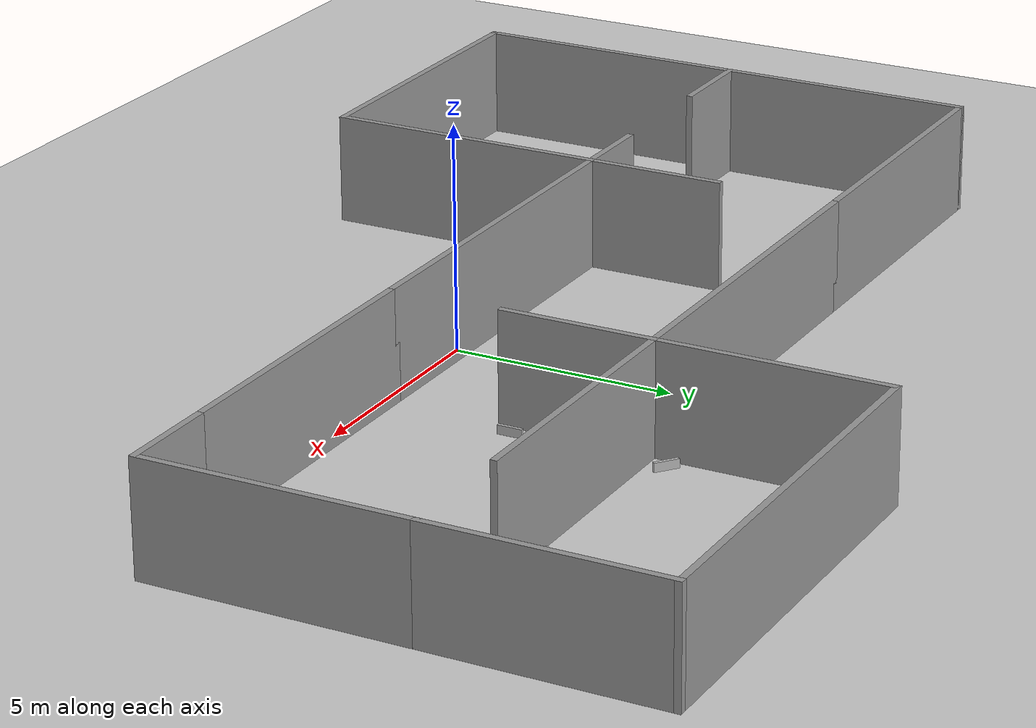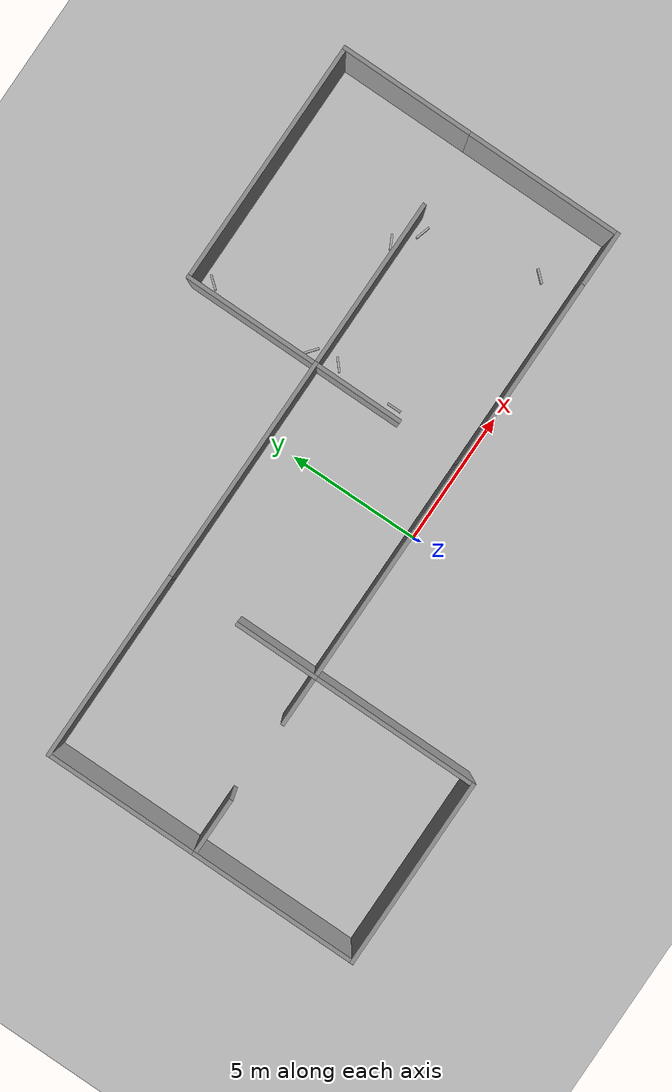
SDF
<sdf version="1.6">
 <world name="default">
  <model name="ground_plane">
   <static>1</static>
   <link name="link">
    <collision name="collision">
     <geometry><plane><normal>0 0 1</normal><size>100 100</size></plane></geometry>
     <surface>
      <contact><collide_bitmask>65535</collide_bitmask></contact>
      <friction><ode><mu>100</mu><mu2>50</mu2></ode></friction>
     </surface>
    </collision>
    <visual name="visual">
     <cast_shadows>0</cast_shadows>
     <geometry><plane><normal>0 0 1</normal><size>100 100</size></plane></geometry>
     <material>
      <script><uri>file://media/materials/scripts/gazebo.material</uri><name>Gazebo/Grey</name></script>
     </material>
    </visual>
   </link>
  </model>
  <model name="lsda">
   <pose>-0.31934 2.51926 0 0 -0 0</pose>
   <link name="Wall_0">
    <collision name="Wall_0_Collision">
     <geometry><box><size>7.25 0.15 2.5</size></box></geometry>
     <pose>0 0 1.25 0 -0 0</pose>
    </collision>
    <visual name="Wall_0_Visual">
     <pose>0 0 1.25 0 -0 0</pose>
     <geometry><box><size>7.25 0.15 2.5</size></box></geometry>
     <material>
      <script><uri>file://media/materials/scripts/gazebo.material</uri><name>Gazebo/Grey</name></script>
      <ambient>0.333333 0.341176 0.32549 1</ambient>
     </material>
     <meta><layer>0</layer></meta>
    </visual>
    <pose>-8.9 -8.65 0 0 -0 3.14159</pose>
   </link>
   <link name="Wall_1">
    <collision name="Wall_1_Collision">
     <geometry><box><size>6.5 0.15 2.5</size></box></geometry>
     <pose>0 0 1.25 0 -0 0</pose>
    </collision>
    <visual name="Wall_1_Visual">
     <pose>0 0 1.25 0 -0 0</pose>
     <geometry><box><size>6.5 0.15 2.5</size></box></geometry>
     <material>
      <script><uri>file://media/materials/scripts/gazebo.material</uri><name>Gazebo/Grey</name></script>
      <ambient>0.333333 0.341176 0.32549 1</ambient>
     </material>
     <meta><layer>0</layer></meta>
    </visual>
    <pose>-12.45 -5.475 0 0 -0 1.5708</pose>
   </link>
   <link name="Wall_10">
    <collision name="Wall_10_Collision">
     <geometry><box><size>7.25 0.15 2.5</size></box></geometry>
     <pose>0 0 1.25 0 -0 0</pose>
    </collision>
    <visual name="Wall_10_Visual">
     <pose>0 0 1.25 0 -0 0</pose>
     <geometry><box><size>7.25 0.15 2.5</size></box></geometry>
     <material>
      <script><uri>file://media/materials/scripts/gazebo.material</uri><name>Gazebo/Grey</name></script>
      <ambient>0.333333 0.341176 0.32549 1</ambient>
     </material>
     <meta><layer>0</layer></meta>
    </visual>
    <pose>-8.9 3.55 0 0 -0 0</pose>
   </link>
   <link name="Wall_12">
    <collision name="Wall_12_Collision">
     <geometry><box><size>3.25 0.15 2.5</size></box></geometry>
     <pose>0 0 1.25 0 -0 0</pose>
    </collision>
    <visual name="Wall_12_Visual">
     <pose>0 0 1.25 0 -0 0</pose>
     <geometry><box><size>3.25 0.15 2.5</size></box></geometry>
     <material>
      <script><uri>file://media/materials/scripts/gazebo.material</uri><name>Gazebo/Grey</name></script>
      <ambient>0.333333 0.341176 0.32549 1</ambient>
     </material>
     <meta><layer>0</layer></meta>
    </visual>
    <pose>-5.35 -0.75 0 0 -0 1.5708</pose>
   </link>
   <link name="Wall_14">
    <collision name="Wall_14_Collision">
     <geometry><box><size>8.75 0.15 2.5</size></box></geometry>
     <pose>0 0 1.25 0 -0 0</pose>
    </collision>
    <visual name="Wall_14_Visual">
     <pose>0 0 1.25 0 -0 0</pose>
     <geometry><box><size>8.75 0.15 2.5</size></box></geometry>
     <material>
      <script><uri>file://media/materials/scripts/gazebo.material</uri><name>Gazebo/Grey</name></script>
      <ambient>0.333333 0.341176 0.32549 1</ambient>
     </material>
     <meta><layer>0</layer></meta>
    </visual>
    <pose>-1.05 -2.3 0 0 -0 0</pose>
   </link>
   <link name="Wall_16">
    <collision name="Wall_16_Collision">
     <geometry><box><size>8.75 0.15 2.5</size></box></geometry>
     <pose>0 0 1.25 0 -0 0</pose>
    </collision>
    <visual name="Wall_16_Visual">
     <pose>0 0 1.25 0 -0 0</pose>
     <geometry><box><size>8.75 0.15 2.5</size></box></geometry>
     <material>
      <script><uri>file://media/materials/scripts/gazebo.material</uri><name>Gazebo/Grey</name></script>
      <ambient>0.333333 0.341176 0.32549 1</ambient>
     </material>
     <meta><layer>0</layer></meta>
    </visual>
    <pose>-1.05 3.55 0 0 -0 0</pose>
   </link>
   <link name="Wall_17">
    <collision name="Wall_17_Collision">
     <geometry><box><size>3.5 0.15 2.5</size></box></geometry>
     <pose>0 0 1.25 0 -0 0</pose>
    </collision>
    <visual name="Wall_17_Visual">
     <pose>0 0 1.25 0 -0 0</pose>
     <geometry><box><size>3.5 0.15 2.5</size></box></geometry>
     <material>
      <script><uri>file://media/materials/scripts/gazebo.material</uri><name>Gazebo/Grey</name></script>
      <ambient>0.333333 0.341176 0.32549 1</ambient>
     </material>
     <meta><layer>0</layer></meta>
    </visual>
    <pose>3.25 1.875 0 0 -0 -1.5708</pose>
   </link>
   <link name="Wall_27">
    <collision name="Wall_27_Collision">
     <geometry><box><size>7.25 0.15 2.5</size></box></geometry>
     <pose>0 0 1.25 0 -0 0</pose>
    </collision>
    <visual name="Wall_27_Visual">
     <pose>0 0 1.25 0 -0 0</pose>
     <geometry><box><size>7.25 0.15 2.5</size></box></geometry>
     <material>
      <script><uri>file://media/materials/scripts/gazebo.material</uri><name>Gazebo/Grey</name></script>
      <ambient>0.333333 0.341176 0.32549 1</ambient>
     </material>
     <meta><layer>0</layer></meta>
    </visual>
    <pose>6.8 -2.3 0 0 -0 0</pose>
   </link>
   <link name="Wall_29">
    <collision name="Wall_29_Collision">
     <geometry><box><size>2.25 0.15 2.5</size></box></geometry>
     <pose>0 0 1.25 0 -0 0</pose>
    </collision>
    <visual name="Wall_29_Visual">
     <pose>0 0 1.25 0 -0 0</pose>
     <geometry><box><size>2.25 0.15 2.5</size></box></geometry>
     <material>
      <script><uri>file://media/materials/scripts/gazebo.material</uri><name>Gazebo/Grey</name></script>
      <ambient>0.333333 0.341176 0.32549 1</ambient>
     </material>
     <meta><layer>0</layer></meta>
    </visual>
    <pose>11.4 -2.3 0 0 -0 0</pose>
   </link>
   <link name="Wall_30">
    <collision name="Wall_30_Collision">
     <geometry><box><size>6.00085 0.15 2.5</size></box></geometry>
     <pose>0 0 1.25 0 -0 0</pose>
    </collision>
    <visual name="Wall_30_Visual">
     <pose>0 0 1.25 0 -0 0</pose>
     <geometry><box><size>6.00085 0.15 2.5</size></box></geometry>
     <material>
      <script><uri>file://media/materials/scripts/gazebo.material</uri><name>Gazebo/Grey</name></script>
      <ambient>0.333333 0.341176 0.32549 1</ambient>
     </material>
     <meta><layer>0</layer></meta>
    </visual>
    <pose>12.45 0.625 0 0 -0 1.5708</pose>
   </link>
   <link name="Wall_34">
    <collision name="Wall_34_Collision">
     <geometry><box><size>5.25 0.15 2.5</size></box></geometry>
     <pose>0 0 1.25 0 -0 0</pose>
    </collision>
    <visual name="Wall_34_Visual">
     <pose>0 0 1.25 0 -0 0</pose>
     <geometry><box><size>5.25 0.15 2.5</size></box></geometry>
     <material>
      <script><uri>file://media/materials/scripts/gazebo.material</uri><name>Gazebo/Grey</name></script>
      <ambient>0.333333 0.341176 0.32549 1</ambient>
     </material>
     <meta><layer>0</layer></meta>
    </visual>
    <pose>3.25 6.1 0 0 -0 1.5708</pose>
   </link>
   <link name="Wall_38">
    <collision name="Wall_38_Collision">
     <geometry><box><size>5.25 0.15 2.5</size></box></geometry>
     <pose>0 0 1.25 0 -0 0</pose>
    </collision>
    <visual name="Wall_38_Visual">
     <pose>0 0 1.25 0 -0 0</pose>
     <geometry><box><size>5.25 0.15 2.5</size></box></geometry>
     <material>
      <script><uri>file://media/materials/scripts/gazebo.material</uri><name>Gazebo/Grey</name></script>
      <ambient>0.333333 0.341176 0.32549 1</ambient>
     </material>
     <meta><layer>0</layer></meta>
    </visual>
    <pose>12.45 6.1 0 0 -0 1.5708</pose>
   </link>
   <link name="Wall_39">
    <collision name="Wall_39_Collision">
     <geometry><box><size>9.35 0.15 2.5</size></box></geometry>
     <pose>0 0 1.25 0 -0 0</pose>
    </collision>
    <visual name="Wall_39_Visual">
     <pose>0 0 1.25 0 -0 0</pose>
     <geometry><box><size>9.35 0.15 2.5</size></box></geometry>
     <material>
      <script><uri>file://media/materials/scripts/gazebo.material</uri><name>Gazebo/Grey</name></script>
      <ambient>0.333333 0.341176 0.32549 1</ambient>
     </material>
     <meta><layer>0</layer></meta>
    </visual>
    <pose>7.85 8.65 0 0 -0 3.14159</pose>
   </link>
   <link name="Wall_4">
    <collision name="Wall_4_Collision">
     <geometry><box><size>6.5 0.15 2.5</size></box></geometry>
     <pose>0 0 1.25 0 -0 0</pose>
    </collision>
    <visual name="Wall_4_Visual">
     <pose>0 0 1.25 0 -0 0</pose>
     <geometry><box><size>6.5 0.15 2.5</size></box></geometry>
     <material>
      <script><uri>file://media/materials/scripts/gazebo.material</uri><name>Gazebo/Grey</name></script>
      <ambient>0.333333 0.341176 0.32549 1</ambient>
     </material>
     <meta><layer>0</layer></meta>
    </visual>
    <pose>-5.35 -5.475 0 0 -0 1.5708</pose>
   </link>
   <link name="Wall_41">
    <collision name="Wall_41_Collision">
     <geometry><box><size>6.5 0.15 2.5</size></box></geometry>
     <pose>0 0 1.25 0 -0 0</pose>
    </collision>
    <visual name="Wall_41_Visual">
     <pose>0 0 1.25 0 -0 0</pose>
     <geometry><box><size>6.5 0.15 2.5</size></box></geometry>
     <material>
      <script><uri>file://media/materials/scripts/gazebo.material</uri><name>Gazebo/Grey</name></script>
      <ambient>0.333333 0.341176 0.32549 1</ambient>
     </material>
     <meta><layer>0</layer></meta>
    </visual>
    <pose>6.425 3.55 0 0 -0 0</pose>
   </link>
   <link name="Wall_5">
    <collision name="Wall_5_Collision">
     <geometry><box><size>2 0.15 2.5</size></box></geometry>
     <pose>0 0 1.25 0 -0 0</pose>
    </collision>
    <visual name="Wall_5_Visual">
     <pose>0 0 1.25 0 -0 0</pose>
     <geometry><box><size>2 0.15 2.5</size></box></geometry>
     <material>
      <script><uri>file://media/materials/scripts/gazebo.material</uri><name>Gazebo/Grey</name></script>
      <ambient>0.333333 0.341176 0.32549 1</ambient>
     </material>
     <meta><layer>0</layer></meta>
    </visual>
    <pose>-6.275 -2.3 0 0 -0 3.14159</pose>
   </link>
   <link name="Wall_7">
    <collision name="Wall_7_Collision">
     <geometry><box><size>2.25 0.15 2.5</size></box></geometry>
     <pose>0 0 1.25 0 -0 0</pose>
    </collision>
    <visual name="Wall_7_Visual">
     <pose>0 0 1.25 0 -0 0</pose>
     <geometry><box><size>2.25 0.15 2.5</size></box></geometry>
     <material>
      <script><uri>file://media/materials/scripts/gazebo.material</uri><name>Gazebo/Grey</name></script>
      <ambient>0.333333 0.341176 0.32549 1</ambient>
     </material>
     <meta><layer>0</layer></meta>
    </visual>
    <pose>-11.4 -2.3 0 0 -0 0</pose>
   </link>
   <link name="Wall_9">
    <collision name="Wall_9_Collision">
     <geometry><box><size>6 0.15 2.5</size></box></geometry>
     <pose>0 0 1.25 0 -0 0</pose>
    </collision>
    <visual name="Wall_9_Visual">
     <pose>0 0 1.25 0 -0 0</pose>
     <geometry><box><size>6 0.15 2.5</size></box></geometry>
     <material>
      <script><uri>file://media/materials/scripts/gazebo.material</uri><name>Gazebo/Grey</name></script>
      <ambient>0.333333 0.341176 0.32549 1</ambient>
     </material>
     <meta><layer>0</layer></meta>
    </visual>
    <pose>-12.45 0.625 0 0 -0 1.5708</pose>
   </link>
   <static>1</static>
  </model>
  <model name="cat_picture_1">
   <static>1</static>
   <link name="box">
    <collision name="collision"><geometry><box><size>0.55 0.075 0.2</size></box></geometry></collision>
    <visual name="visual">
     <geometry><box><size>0.55 0.075 0.2</size></box></geometry>
     <material>
      <script>
       <uri>model://cat_picture/materials/scripts</uri>
       <uri>model://cat_picture/materials/textures</uri>
       <name>cat_picture</name>
      </script>
     </material>
    </visual>
   </link>
   <pose>3.51266 5.54578 0.101862 0 -0 0.727913</pose>
  </model>
  <model name="cat_picture_2">
   <static>1</static>
   <link name="box">
    <collision name="collision"><geometry><box><size>0.55 0.075 0.2</size></box></geometry></collision>
    <visual name="visual">
     <geometry><box><size>0.55 0.075 0.2</size></box></geometry>
     <material>
      <script>
       <uri>model://cat_picture/materials/scripts</uri>
       <uri>model://cat_picture/materials/textures</uri>
       <name>cat_picture</name>
      </script>
     </material>
    </visual>
   </link>
   <pose>8.92966 5.70291 0.104987 0 0 -0.290013</pose>
  </model>
  <model name="dog_picture_1">
   <static>1</static>
   <link name="box">
    <collision name="collision"><geometry><box><size>0.55 0.075 0.2</size></box></geometry></collision>
    <visual name="visual">
     <geometry><box><size>0.55 0.075 0.2</size></box></geometry>
     <material>
      <script>
       <uri>model://dog_picture/materials/scripts</uri>
       <uri>model://dog_picture/materials/textures</uri>
       <name>dog_picture</name>
      </script>
     </material>
    </visual>
   </link>
   <pose>9.97365 1.50109 0.100326 0 -0 0.845469</pose>
  </model>
  <model name="dog_picture_2">
   <static>1</static>
   <link name="box">
    <collision name="collision"><geometry><box><size>0.55 0.075 0.2</size></box></geometry></collision>
    <visual name="visual">
     <geometry><box><size>0.55 0.075 0.2</size></box></geometry>
     <material>
      <script>
       <uri>model://dog_picture/materials/scripts</uri>
       <uri>model://dog_picture/materials/textures</uri>
       <name>dog_picture</name>
      </script>
     </material>
    </visual>
   </link>
   <pose>3.41349 10.73 0.104027 0 -0 0.874389</pose>
  </model>
  <model name="person_picture_2">
   <static>1</static>
   <link name="box">
    <collision name="collision"><geometry><box><size>0.55 0.075 0.2</size></box></geometry></collision>
    <visual name="visual">
     <geometry><box><size>0.55 0.075 0.2</size></box></geometry>
     <material>
      <script>
       <uri>model://person_picture/materials/scripts</uri>
       <uri>model://person_picture/materials/textures</uri>
       <name>person_picture</name>
      </script>
     </material>
    </visual>
   </link>
   <pose>3.36173 3.10499 0.10415 0 -0 1.57805</pose>
  </model>
  <model name="person_picture_3">
   <static>1</static>
   <link name="box">
    <collision name="collision"><geometry><box><size>0.55 0.075 0.2</size></box></geometry></collision>
    <visual name="visual">
     <geometry><box><size>0.55 0.075 0.2</size></box></geometry>
     <material>
      <script>
       <uri>model://person_picture/materials/scripts</uri>
       <uri>model://person_picture/materials/textures</uri>
       <name>person_picture</name>
      </script>
     </material>
    </visual>
   </link>
   <pose>3.38485 6.58173 0.105133 0 0 -0.676441</pose>
  </model>
  <model name="person_picture_4">
   <static>1</static>
   <link name="box">
    <collision name="collision"><geometry><box><size>0.55 0.075 0.2</size></box></geometry></collision>
    <visual name="visual">
     <geometry><box><size>0.55 0.075 0.2</size></box></geometry>
     <material>
      <script>
       <uri>model://person_picture/materials/scripts</uri>
       <uri>model://person_picture/materials/textures</uri>
       <name>person_picture</name>
      </script>
     </material>
    </visual>
   </link>
   <pose>8.06329 6.4349 0.101363 0 -0 0.467035</pose>
  </model>
 </world>
</sdf>
